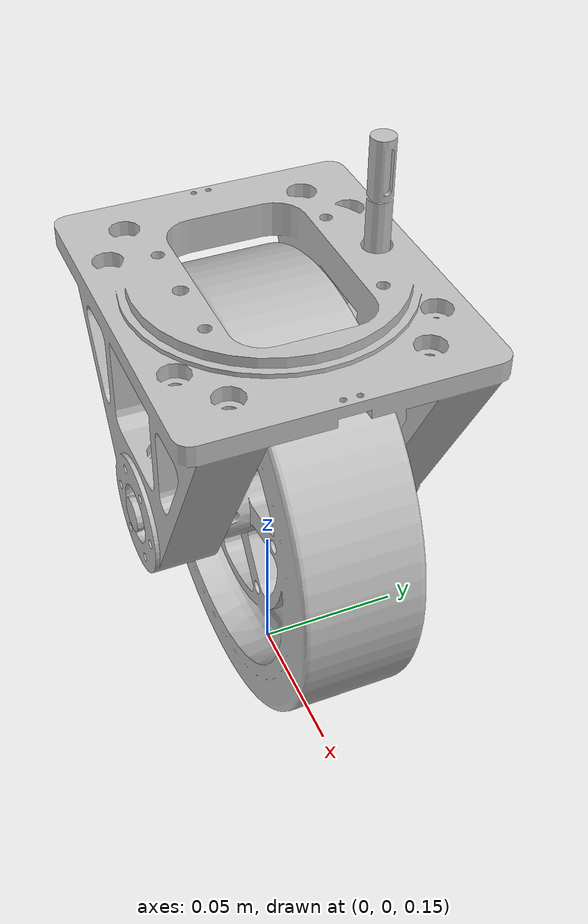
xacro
<?xml version="1.0"?>
<robot name="swerve_drive" xmlns:xacro="http://www.ros.org/wiki/xacro">
  <xacro:include filename="$(find swerve_drive_description)/urdf/wheel.xacro" />
  <xacro:include filename="$(find swerve_drive_description)/urdf/swerve_drive.gazebo.xacro" />
  <link name="base_footprint"/>

  <xacro:swerve_wheel side=""  parent="base_footprint">
    <origin xyz="0.0 0.0 0.3" rpy="0 0 0" />
  </xacro:swerve_wheel>
</robot>

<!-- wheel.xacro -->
<robot xmlns:xacro="http://www.ros.org/wiki/xacro">
  <xacro:include filename="$(find swerve_drive_description)/urdf/wheel.gazebo.xacro" />
  <xacro:include filename="$(find swerve_drive_description)/urdf/wheel.transmission.xacro" />
  <xacro:macro name="swerve_wheel" params="side parent *origin">
    <link
        name="${side}swerve_link">
        <inertial>
        <origin
            xyz="-6.5343E-06 0.003953 -0.024575"
            rpy="0 0 0" />
        <mass
            value="0.23291" />
        <inertia
            ixx="0.00017789"
            ixy="3.1284E-09"
            ixz="9.3072E-09"
            iyy="0.00031161"
            iyz="2.3005E-08"
            izz="0.00028635" />
        </inertial>
        <visual>
        <origin
            xyz="0 0 0"
            rpy="0 0 0" />
        <geometry>
            <mesh
            filename="package://swerve_drive_description/meshes/swerve_link.STL" />
        </geometry>
        <material
            name="">
            <color
            rgba="0.75294 0.75294 0.75294 1" />
        </material>
        </visual>
        <collision>
        <origin
            xyz="0 0 0"
            rpy="0 0 0" />
        <geometry>
            <mesh
            filename="package://swerve_drive_description/meshes/swerve_link.STL" />
        </geometry>
        </collision>
    </link>
    <joint
        name="${side}swerve_joint"
        type="continuous">
        <xacro:insert_block name="origin" />
        <parent
        link="${parent}" />
        <child
        link="${side}swerve_link" />
        <axis
        xyz="0 0 1" />
    </joint>
    <link
        name="${side}wheel_link">
        <inertial>
        <origin
            xyz="-1.1437E-05 -4.8244E-06 -7.4559E-06"
            rpy="0 0 0" />
        <mass
            value="0.39722" />
        <inertia
            ixx="0.00072419"
            ixy="-2.8256E-08"
            ixz="2.0907E-08"
            iyy="0.0013599"
            iyz="-1.7286E-08"
            izz="0.00072418" />
        </inertial>
        <visual>
        <origin
            xyz="0 0 0"
            rpy="0 0 0" />
        <geometry>
            <mesh
            filename="package://swerve_drive_description/meshes/wheel_link.STL" />
        </geometry>
        <material
            name="">
            <color
            rgba="0.75294 0.75294 0.75294 1" />
        </material>
        </visual>
        <collision>
        <origin
            xyz="0 0 0"
            rpy="0 0 0" />
        <geometry>
            <mesh
            filename="package://swerve_drive_description/meshes/wheel_link.STL" />
        </geometry>
        </collision>
    </link>
    <joint
        name="${side}wheel_joint"
        type="continuous">
        <origin
        xyz="0 0.00047482 -0.07"
        rpy="0 0 0" />
        <parent
        link="${side}swerve_link" />
        <child
        link="${side}wheel_link" />
        <axis
        xyz="0 -1 0" />
    </joint>
    <xacro:wheel_transmission side="${side}"/>
    <xacro:wheel_gazebo side="${side}"/>
  </xacro:macro>
</robot>

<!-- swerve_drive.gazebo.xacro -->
<robot name="swerve_drive" xmlns:xacro="http://www.ros.org/wiki/xacro">
  <physics type='ode'>
    <max_step_size>0.001</max_step_size>
    <real_time_factor>0.1</real_time_factor>
    <real_time_update_rate>1000</real_time_update_rate>
    <gravity>0 0 -9.8</gravity>
  </physics>

  <gazebo reference="base_link">
    <mu1>0.2</mu1>
    <mu2>0.2</mu2>
    <material>Gazebo/White</material>
    <selfCollide>false</selfCollide>
  </gazebo>

  <gazebo>
    <plugin filename="libgazebo_ros2_control.so" name="gazebo_ros2_control">
      <robot_param>robot_description</robot_param>
      <parameters>$(find swerve_drive_description)/config/ros_controllers.yaml</parameters>
    </plugin>
  </gazebo>
</robot>
